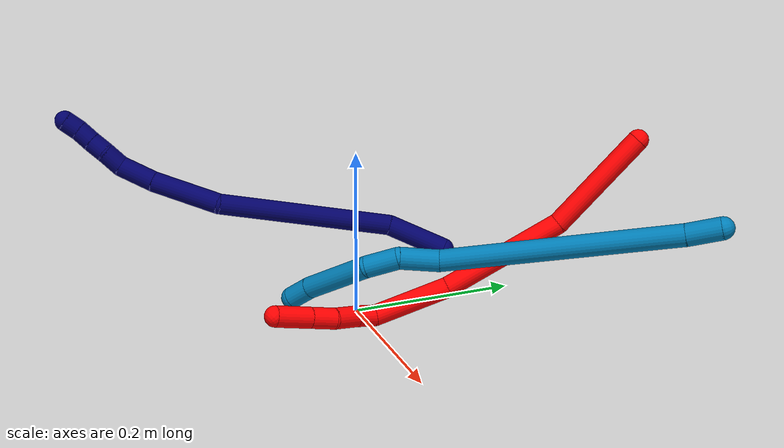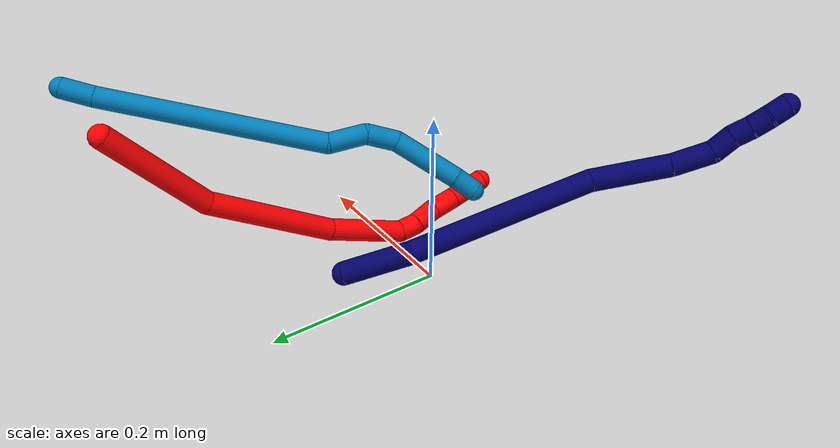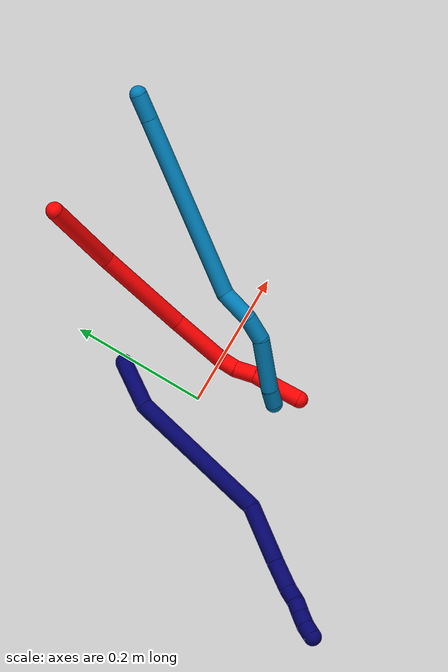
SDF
<sdf version="1.7">
 <world name="default">
  <model name="photoneo_s_sensor">
   <static>1</static>
   <pose>0 0 2 1.57079 1.57079 3.14159</pose>
   <link name="link">
    <inertial><mass>0.1</mass></inertial>
    <sensor name="sensor" type="depth">
     <update_rate>30</update_rate>
     <camera>
      <horizontal_fov>1.22</horizontal_fov>
      <image><width>1920</width><height>1200</height><format>B8G8R8</format></image>
      <clip><near>0.1</near><far>4</far></clip>
      <depth_camera><output>points</output></depth_camera>
     </camera>
     <plugin name="camera_plugin" filename="libgazebo_ros_depth_camera.so">
      <baseline>0.2</baseline>
      <alwaysOn>1</alwaysOn>
      <updateRate>0.0</updateRate>
      <cameraName>camera_ir</cameraName>
      <imageTopicName>/camera/color/image_raw</imageTopicName>
      <cameraInfoTopicName>/camera/color/camera_info</cameraInfoTopicName>
      <depthImageTopicName>/camera/depth/image_raw</depthImageTopicName>
      <depthImageCameraInfoTopicName>/camera/depth/camera_info</depthImageCameraInfoTopicName>
      <pointCloudTopicName>/camera/depth/points</pointCloudTopicName>
      <frameName>fr_optical</frameName>
      <pointCloudCutoff>0.1</pointCloudCutoff>
      <pointCloudCutoffMax>2.0</pointCloudCutoffMax>
      <distortionK1>0</distortionK1>
      <distortionK2>0</distortionK2>
      <distortionK3>0</distortionK3>
      <distortionT1>0</distortionT1>
      <distortionT2>0</distortionT2>
      <CxPrime>0</CxPrime>
      <Cx>0</Cx>
      <Cy>0</Cy>
      <focalLength>0</focalLength>
      <hackBaseline>0</hackBaseline>
     </plugin>
    </sensor>
   </link>
  </model>
  <model name="bin">
   <static>1</static>
   <link name="bottom">
    <collision name="collision-bottom">
     <pose>0 0 -0.01 0 -0 0</pose>
     <geometry><box><size>0.8 0.6 0.02</size></box></geometry>
     <surface>
      <friction><ode><mu>100</mu><mu2>100</mu2></ode></friction>
      <contact><collide_bitmask>65535</collide_bitmask></contact>
     </surface>
    </collision>
   </link>
   <link name="west_wall">
    <collision name="collision-west_wall">
     <pose>-0.41 0 0.1 0 -0 0</pose>
     <geometry><box><size>0.02 0.6 0.2</size></box></geometry>
     <surface>
      <friction><ode><mu>100</mu><mu2>100</mu2></ode></friction>
      <contact><collide_bitmask>65535</collide_bitmask></contact>
     </surface>
    </collision>
   </link>
   <link name="east_wall">
    <collision name="collision-east_wall">
     <pose>0.41 0 0.1 0 -0 0</pose>
     <geometry><box><size>0.02 0.6 0.2</size></box></geometry>
     <surface>
      <friction><ode><mu>100</mu><mu2>100</mu2></ode></friction>
      <contact><collide_bitmask>65535</collide_bitmask></contact>
     </surface>
    </collision>
   </link>
   <link name="south_wall">
    <collision name="collision-south_wall">
     <pose>0 -0.31 0.1 0 -0 0</pose>
     <geometry><box><size>0.8 0.02 0.2</size></box></geometry>
     <surface>
      <friction><ode><mu>100</mu><mu2>100</mu2></ode></friction>
      <contact><collide_bitmask>65535</collide_bitmask></contact>
     </surface>
    </collision>
   </link>
   <link name="north_wall">
    <collision name="collision-north_wall">
     <pose>0 0.31 0.1 0 -0 0</pose>
     <geometry><box><size>0.8 0.02 0.2</size></box></geometry>
     <surface>
      <friction><ode><mu>100</mu><mu2>100</mu2></ode></friction>
      <contact><collide_bitmask>65535</collide_bitmask></contact>
     </surface>
    </collision>
   </link>
  </model>
  <model name="2">
   <static>0</static>
   <link name="2">
    <collision name="collision-cylinder-e_1_1_4">
     <pose>-0.027625 0.005989 -0.060037 -3.04217 -0.429371 2.69292</pose>
     <geometry><cylinder><radius>0.0125</radius><length>0.132718</length></cylinder></geometry>
     <surface>
      <friction><ode><mu>1.16</mu><mu2>1.16</mu2><slip1>0</slip1><slip2>0</slip2></ode></friction>
      <contact><ode><kp>1e+06</kp><kd>1</kd><max_vel>0</max_vel><min_depth>0.001</min_depth></ode></contact>
     </surface>
    </collision>
    <visual name="visual-cylinder-e_1_1_4">
     <pose>-0.027625 0.005989 -0.060037 -3.04217 -0.429371 2.69292</pose>
     <geometry><cylinder><radius>0.0125</radius><length>0.132718</length></cylinder></geometry>
     <material><ambient>1 0 0 1</ambient></material>
    </visual>
    <collision name="collision-cylinder-e_2_4_5">
     <pose>-0.076169 -0.003635 -0.190055 2.92208 -0.283874 -1.82777</pose>
     <geometry><cylinder><radius>0.0125</radius><length>0.149379</length></cylinder></geometry>
     <surface>
      <friction><ode><mu>1.16</mu><mu2>1.16</mu2><slip1>0</slip1><slip2>0</slip2></ode></friction>
      <contact><ode><kp>1e+06</kp><kd>1</kd><max_vel>0</max_vel><min_depth>0.001</min_depth></ode></contact>
     </surface>
    </collision>
    <visual name="visual-cylinder-e_2_4_5">
     <pose>-0.076169 -0.003635 -0.190055 2.92208 -0.283874 -1.82777</pose>
     <geometry><cylinder><radius>0.0125</radius><length>0.149379</length></cylinder></geometry>
     <material><ambient>1 0 0 1</ambient></material>
    </visual>
    <collision name="collision-cylinder-e_3_5_6">
     <pose>-0.105716 -0.035647 -0.301394 2.7641 -0.191541 -0.931925</pose>
     <geometry><cylinder><radius>0.0125</radius><length>0.090642</length></cylinder></geometry>
     <surface>
      <friction><ode><mu>1.16</mu><mu2>1.16</mu2><slip1>0</slip1><slip2>0</slip2></ode></friction>
      <contact><ode><kp>1e+06</kp><kd>1</kd><max_vel>0</max_vel><min_depth>0.001</min_depth></ode></contact>
     </surface>
    </collision>
    <visual name="visual-cylinder-e_3_5_6">
     <pose>-0.105716 -0.035647 -0.301394 2.7641 -0.191541 -0.931925</pose>
     <geometry><cylinder><radius>0.0125</radius><length>0.090642</length></cylinder></geometry>
     <material><ambient>1 0 0 1</ambient></material>
    </visual>
    <collision name="collision-cylinder-e_4_6_7">
     <pose>-0.112781 -0.059049 -0.351464 2.46452 0.13891 0.39014</pose>
     <geometry><cylinder><radius>0.0125</radius><length>0.02257</length></cylinder></geometry>
     <surface>
      <friction><ode><mu>1.16</mu><mu2>1.16</mu2><slip1>0</slip1><slip2>0</slip2></ode></friction>
      <contact><ode><kp>1e+06</kp><kd>1</kd><max_vel>0</max_vel><min_depth>0.001</min_depth></ode></contact>
     </surface>
    </collision>
    <visual name="visual-cylinder-e_4_6_7">
     <pose>-0.112781 -0.059049 -0.351464 2.46452 0.13891 0.39014</pose>
     <geometry><cylinder><radius>0.0125</radius><length>0.02257</length></cylinder></geometry>
     <material><ambient>1 0 0 1</ambient></material>
    </visual>
    <collision name="collision-cylinder-e_5_7_8">
     <pose>-0.105414 -0.074162 -0.372051 2.54239 0.383597 1.12242</pose>
     <geometry><cylinder><radius>0.0125</radius><length>0.031017</length></cylinder></geometry>
     <surface>
      <friction><ode><mu>1.16</mu><mu2>1.16</mu2><slip1>0</slip1><slip2>0</slip2></ode></friction>
      <contact><ode><kp>1e+06</kp><kd>1</kd><max_vel>0</max_vel><min_depth>0.001</min_depth></ode></contact>
     </surface>
    </collision>
    <visual name="visual-cylinder-e_5_7_8">
     <pose>-0.105414 -0.074162 -0.372051 2.54239 0.383597 1.12242</pose>
     <geometry><cylinder><radius>0.0125</radius><length>0.031017</length></cylinder></geometry>
     <material><ambient>1 0 0 1</ambient></material>
    </visual>
    <collision name="collision-cylinder-e_6_8_9">
     <pose>-0.096449 -0.092249 -0.394663 2.39288 0.212444 0.530006</pose>
     <geometry><cylinder><radius>0.0125</radius><length>0.029985</length></cylinder></geometry>
     <surface>
      <friction><ode><mu>1.16</mu><mu2>1.16</mu2><slip1>0</slip1><slip2>0</slip2></ode></friction>
      <contact><ode><kp>1e+06</kp><kd>1</kd><max_vel>0</max_vel><min_depth>0.001</min_depth></ode></contact>
     </surface>
    </collision>
    <visual name="visual-cylinder-e_6_8_9">
     <pose>-0.096449 -0.092249 -0.394663 2.39288 0.212444 0.530006</pose>
     <geometry><cylinder><radius>0.0125</radius><length>0.029985</length></cylinder></geometry>
     <material><ambient>1 0 0 1</ambient></material>
    </visual>
    <collision name="collision-cylinder-e_7_9_2">
     <pose>-0.087804 -0.116564 -0.42094 2.3964 0.253734 0.630889</pose>
     <geometry><cylinder><radius>0.0125</radius><length>0.043689</length></cylinder></geometry>
     <surface>
      <friction><ode><mu>1.16</mu><mu2>1.16</mu2><slip1>0</slip1><slip2>0</slip2></ode></friction>
      <contact><ode><kp>1e+06</kp><kd>1</kd><max_vel>0</max_vel><min_depth>0.001</min_depth></ode></contact>
     </surface>
    </collision>
    <visual name="visual-cylinder-e_7_9_2">
     <pose>-0.087804 -0.116564 -0.42094 2.3964 0.253734 0.630889</pose>
     <geometry><cylinder><radius>0.0125</radius><length>0.043689</length></cylinder></geometry>
     <material><ambient>1 0 0 1</ambient></material>
    </visual>
    <collision name="collision-sphere-2">
     <pose>-0.082321 -0.130903 -0.436481 0 -0 0</pose>
     <geometry><sphere><radius>0.0125</radius></sphere></geometry>
     <surface>
      <friction><ode><mu>1.16</mu><mu2>1.16</mu2><slip1>0</slip1><slip2>0</slip2></ode></friction>
      <contact><ode><kp>1e+06</kp><kd>1</kd><max_vel>0</max_vel><min_depth>0.001</min_depth></ode></contact>
     </surface>
    </collision>
    <visual name="visual-sphere-2">
     <pose>-0.082321 -0.130903 -0.436481 0 -0 0</pose>
     <geometry><sphere><radius>0.0125</radius></sphere></geometry>
     <material><ambient>1 0 0 1</ambient></material>
    </visual>
    <collision name="collision-sphere-9">
     <pose>-0.093287 -0.102225 -0.405399 0 -0 0</pose>
     <geometry><sphere><radius>0.0125</radius></sphere></geometry>
     <surface>
      <friction><ode><mu>1.16</mu><mu2>1.16</mu2><slip1>0</slip1><slip2>0</slip2></ode></friction>
      <contact><ode><kp>1e+06</kp><kd>1</kd><max_vel>0</max_vel><min_depth>0.001</min_depth></ode></contact>
     </surface>
    </collision>
    <visual name="visual-sphere-9">
     <pose>-0.093287 -0.102225 -0.405399 0 -0 0</pose>
     <geometry><sphere><radius>0.0125</radius></sphere></geometry>
     <material><ambient>1 0 0 1</ambient></material>
    </visual>
    <collision name="collision-sphere-4">
     <pose>-0.05525 0.011978 -0.120075 0 -0 0</pose>
     <geometry><sphere><radius>0.0125</radius></sphere></geometry>
     <surface>
      <friction><ode><mu>1.16</mu><mu2>1.16</mu2><slip1>0</slip1><slip2>0</slip2></ode></friction>
      <contact><ode><kp>1e+06</kp><kd>1</kd><max_vel>0</max_vel><min_depth>0.001</min_depth></ode></contact>
     </surface>
    </collision>
    <visual name="visual-sphere-4">
     <pose>-0.05525 0.011978 -0.120075 0 -0 0</pose>
     <geometry><sphere><radius>0.0125</radius></sphere></geometry>
     <material><ambient>1 0 0 1</ambient></material>
    </visual>
    <collision name="collision-sphere-1">
     <geometry><sphere><radius>0.0125</radius></sphere></geometry>
     <surface>
      <friction><ode><mu>1.16</mu><mu2>1.16</mu2><slip1>0</slip1><slip2>0</slip2></ode></friction>
      <contact><ode><kp>1e+06</kp><kd>1</kd><max_vel>0</max_vel><min_depth>0.001</min_depth></ode></contact>
     </surface>
    </collision>
    <visual name="visual-sphere-1">
     <geometry><sphere><radius>0.0125</radius></sphere></geometry>
     <material><ambient>1 0 0 1</ambient></material>
    </visual>
    <collision name="collision-sphere-8">
     <pose>-0.09961 -0.082273 -0.383927 0 -0 0</pose>
     <geometry><sphere><radius>0.0125</radius></sphere></geometry>
     <surface>
      <friction><ode><mu>1.16</mu><mu2>1.16</mu2><slip1>0</slip1><slip2>0</slip2></ode></friction>
      <contact><ode><kp>1e+06</kp><kd>1</kd><max_vel>0</max_vel><min_depth>0.001</min_depth></ode></contact>
     </surface>
    </collision>
    <visual name="visual-sphere-8">
     <pose>-0.09961 -0.082273 -0.383927 0 -0 0</pose>
     <geometry><sphere><radius>0.0125</radius></sphere></geometry>
     <material><ambient>1 0 0 1</ambient></material>
    </visual>
    <collision name="collision-sphere-5">
     <pose>-0.097088 -0.019248 -0.260034 0 -0 0</pose>
     <geometry><sphere><radius>0.0125</radius></sphere></geometry>
     <surface>
      <friction><ode><mu>1.16</mu><mu2>1.16</mu2><slip1>0</slip1><slip2>0</slip2></ode></friction>
      <contact><ode><kp>1e+06</kp><kd>1</kd><max_vel>0</max_vel><min_depth>0.001</min_depth></ode></contact>
     </surface>
    </collision>
    <visual name="visual-sphere-5">
     <pose>-0.097088 -0.019248 -0.260034 0 -0 0</pose>
     <geometry><sphere><radius>0.0125</radius></sphere></geometry>
     <material><ambient>1 0 0 1</ambient></material>
    </visual>
    <collision name="collision-sphere-6">
     <pose>-0.114343 -0.052047 -0.342753 0 -0 0</pose>
     <geometry><sphere><radius>0.0125</radius></sphere></geometry>
     <surface>
      <friction><ode><mu>1.16</mu><mu2>1.16</mu2><slip1>0</slip1><slip2>0</slip2></ode></friction>
      <contact><ode><kp>1e+06</kp><kd>1</kd><max_vel>0</max_vel><min_depth>0.001</min_depth></ode></contact>
     </surface>
    </collision>
    <visual name="visual-sphere-6">
     <pose>-0.114343 -0.052047 -0.342753 0 -0 0</pose>
     <geometry><sphere><radius>0.0125</radius></sphere></geometry>
     <material><ambient>1 0 0 1</ambient></material>
    </visual>
    <collision name="collision-sphere-7">
     <pose>-0.111218 -0.066051 -0.360175 0 -0 0</pose>
     <geometry><sphere><radius>0.0125</radius></sphere></geometry>
     <surface>
      <friction><ode><mu>1.16</mu><mu2>1.16</mu2><slip1>0</slip1><slip2>0</slip2></ode></friction>
      <contact><ode><kp>1e+06</kp><kd>1</kd><max_vel>0</max_vel><min_depth>0.001</min_depth></ode></contact>
     </surface>
    </collision>
    <visual name="visual-sphere-7">
     <pose>-0.111218 -0.066051 -0.360175 0 -0 0</pose>
     <geometry><sphere><radius>0.0125</radius></sphere></geometry>
     <material><ambient>1 0 0 1</ambient></material>
    </visual>
    <inertial>
     <pose>-0.07434 -0.028942 -0.226748 0 -0 0</pose>
     <mass>0.5</mass>
     <inertia>
      <ixx>-0.000414</ixx>
      <ixy>0</ixy>
      <ixz>0</ixz>
      <iyy>-7e-06</iyy>
      <iyz>0</iyz>
      <izz>0.000213</izz>
     </inertia>
    </inertial>
   </link>
   <pose>0.121817 0.301335 0.218559 -0.940984 -0.534197 -0.125945</pose>
  </model>
  <model name="7">
   <static>0</static>
   <link name="7">
    <collision name="collision-cylinder-e_1_1_4">
     <pose>-0.008516 -0.034096 0.009396 1.30189 -0.236299 -0.180341</pose>
     <geometry><cylinder><radius>0.0125</radius><length>0.072757</length></cylinder></geometry>
     <surface>
      <friction><ode><mu>1.16</mu><mu2>1.16</mu2><slip1>0</slip1><slip2>0</slip2></ode></friction>
      <contact><ode><kp>1e+06</kp><kd>1</kd><max_vel>0</max_vel><min_depth>0.001</min_depth></ode></contact>
     </surface>
    </collision>
    <visual name="visual-cylinder-e_1_1_4">
     <pose>-0.008516 -0.034096 0.009396 1.30189 -0.236299 -0.180341</pose>
     <geometry><cylinder><radius>0.0125</radius><length>0.072757</length></cylinder></geometry>
     <material><ambient>0.003922 0 0.403922 1</ambient></material>
    </visual>
    <collision name="collision-cylinder-e_2_4_5">
     <pose>-0.062251 -0.163307 0.010953 1.65303 -0.442475 -0.47906</pose>
     <geometry><cylinder><radius>0.0125</radius><length>0.211213</length></cylinder></geometry>
     <surface>
      <friction><ode><mu>1.16</mu><mu2>1.16</mu2><slip1>0</slip1><slip2>0</slip2></ode></friction>
      <contact><ode><kp>1e+06</kp><kd>1</kd><max_vel>0</max_vel><min_depth>0.001</min_depth></ode></contact>
     </surface>
    </collision>
    <visual name="visual-cylinder-e_2_4_5">
     <pose>-0.062251 -0.163307 0.010953 1.65303 -0.442475 -0.47906</pose>
     <geometry><cylinder><radius>0.0125</radius><length>0.211213</length></cylinder></geometry>
     <material><ambient>0.003922 0 0.403922 1</ambient></material>
    </visual>
    <collision name="collision-cylinder-e_3_5_6">
     <pose>-0.121413 -0.296498 0.016581 1.23087 -0.33242 -0.23612</pose>
     <geometry><cylinder><radius>0.0125</radius><length>0.085455</length></cylinder></geometry>
     <surface>
      <friction><ode><mu>1.16</mu><mu2>1.16</mu2><slip1>0</slip1><slip2>0</slip2></ode></friction>
      <contact><ode><kp>1e+06</kp><kd>1</kd><max_vel>0</max_vel><min_depth>0.001</min_depth></ode></contact>
     </surface>
    </collision>
    <visual name="visual-cylinder-e_3_5_6">
     <pose>-0.121413 -0.296498 0.016581 1.23087 -0.33242 -0.23612</pose>
     <geometry><cylinder><radius>0.0125</radius><length>0.085455</length></cylinder></geometry>
     <material><ambient>0.003922 0 0.403922 1</ambient></material>
    </visual>
    <collision name="collision-cylinder-e_4_6_7">
     <pose>-0.139886 -0.355406 0.035981 1.29329 -0.206178 -0.155887</pose>
     <geometry><cylinder><radius>0.0125</radius><length>0.044257</length></cylinder></geometry>
     <surface>
      <friction><ode><mu>1.16</mu><mu2>1.16</mu2><slip1>0</slip1><slip2>0</slip2></ode></friction>
      <contact><ode><kp>1e+06</kp><kd>1</kd><max_vel>0</max_vel><min_depth>0.001</min_depth></ode></contact>
     </surface>
    </collision>
    <visual name="visual-cylinder-e_4_6_7">
     <pose>-0.139886 -0.355406 0.035981 1.29329 -0.206178 -0.155887</pose>
     <geometry><cylinder><radius>0.0125</radius><length>0.044257</length></cylinder></geometry>
     <material><ambient>0.003922 0 0.403922 1</ambient></material>
    </visual>
    <collision name="collision-cylinder-e_5_7_8">
     <pose>-0.142818 -0.388655 0.043075 1.47758 0.127458 0.116125</pose>
     <geometry><cylinder><radius>0.0125</radius><length>0.025147</length></cylinder></geometry>
     <surface>
      <friction><ode><mu>1.16</mu><mu2>1.16</mu2><slip1>0</slip1><slip2>0</slip2></ode></friction>
      <contact><ode><kp>1e+06</kp><kd>1</kd><max_vel>0</max_vel><min_depth>0.001</min_depth></ode></contact>
     </surface>
    </collision>
    <visual name="visual-cylinder-e_5_7_8">
     <pose>-0.142818 -0.388655 0.043075 1.47758 0.127458 0.116125</pose>
     <geometry><cylinder><radius>0.0125</radius><length>0.025147</length></cylinder></geometry>
     <material><ambient>0.003922 0 0.403922 1</ambient></material>
    </visual>
    <collision name="collision-cylinder-e_6_8_9">
     <pose>-0.140949 -0.410845 0.047228 1.27369 0.02654 0.019631</pose>
     <geometry><cylinder><radius>0.0125</radius><length>0.020449</length></cylinder></geometry>
     <surface>
      <friction><ode><mu>1.16</mu><mu2>1.16</mu2><slip1>0</slip1><slip2>0</slip2></ode></friction>
      <contact><ode><kp>1e+06</kp><kd>1</kd><max_vel>0</max_vel><min_depth>0.001</min_depth></ode></contact>
     </surface>
    </collision>
    <visual name="visual-cylinder-e_6_8_9">
     <pose>-0.140949 -0.410845 0.047228 1.27369 0.02654 0.019631</pose>
     <geometry><cylinder><radius>0.0125</radius><length>0.020449</length></cylinder></geometry>
     <material><ambient>0.003922 0 0.403922 1</ambient></material>
    </visual>
    <collision name="collision-cylinder-e_7_9_10">
     <pose>-0.139697 -0.430625 0.052696 1.32823 0.094789 0.074215</pose>
     <geometry><cylinder><radius>0.0125</radius><length>0.02071</length></cylinder></geometry>
     <surface>
      <friction><ode><mu>1.16</mu><mu2>1.16</mu2><slip1>0</slip1><slip2>0</slip2></ode></friction>
      <contact><ode><kp>1e+06</kp><kd>1</kd><max_vel>0</max_vel><min_depth>0.001</min_depth></ode></contact>
     </surface>
    </collision>
    <visual name="visual-cylinder-e_7_9_10">
     <pose>-0.139697 -0.430625 0.052696 1.32823 0.094789 0.074215</pose>
     <geometry><cylinder><radius>0.0125</radius><length>0.02071</length></cylinder></geometry>
     <material><ambient>0.003922 0 0.403922 1</ambient></material>
    </visual>
    <collision name="collision-cylinder-e_8_10_2">
     <pose>-0.138764 -0.45059 0.056143 1.47365 -0.004648 -0.004217</pose>
     <geometry><cylinder><radius>0.0125</radius><length>0.020012</length></cylinder></geometry>
     <surface>
      <friction><ode><mu>1.16</mu><mu2>1.16</mu2><slip1>0</slip1><slip2>0</slip2></ode></friction>
      <contact><ode><kp>1e+06</kp><kd>1</kd><max_vel>0</max_vel><min_depth>0.001</min_depth></ode></contact>
     </surface>
    </collision>
    <visual name="visual-cylinder-e_8_10_2">
     <pose>-0.138764 -0.45059 0.056143 1.47365 -0.004648 -0.004217</pose>
     <geometry><cylinder><radius>0.0125</radius><length>0.020012</length></cylinder></geometry>
     <material><ambient>0.003922 0 0.403922 1</ambient></material>
    </visual>
    <collision name="collision-sphere-2">
     <pose>-0.13881 -0.460549 0.057113 0 -0 0</pose>
     <geometry><sphere><radius>0.0125</radius></sphere></geometry>
     <surface>
      <friction><ode><mu>1.16</mu><mu2>1.16</mu2><slip1>0</slip1><slip2>0</slip2></ode></friction>
      <contact><ode><kp>1e+06</kp><kd>1</kd><max_vel>0</max_vel><min_depth>0.001</min_depth></ode></contact>
     </surface>
    </collision>
    <visual name="visual-sphere-2">
     <pose>-0.13881 -0.460549 0.057113 0 -0 0</pose>
     <geometry><sphere><radius>0.0125</radius></sphere></geometry>
     <material><ambient>0.003922 0 0.403922 1</ambient></material>
    </visual>
    <collision name="collision-sphere-10">
     <pose>-0.138717 -0.440632 0.055173 0 -0 0</pose>
     <geometry><sphere><radius>0.0125</radius></sphere></geometry>
     <surface>
      <friction><ode><mu>1.16</mu><mu2>1.16</mu2><slip1>0</slip1><slip2>0</slip2></ode></friction>
      <contact><ode><kp>1e+06</kp><kd>1</kd><max_vel>0</max_vel><min_depth>0.001</min_depth></ode></contact>
     </surface>
    </collision>
    <visual name="visual-sphere-10">
     <pose>-0.138717 -0.440632 0.055173 0 -0 0</pose>
     <geometry><sphere><radius>0.0125</radius></sphere></geometry>
     <material><ambient>0.003922 0 0.403922 1</ambient></material>
    </visual>
    <collision name="collision-sphere-9">
     <pose>-0.140677 -0.420618 0.05022 0 -0 0</pose>
     <geometry><sphere><radius>0.0125</radius></sphere></geometry>
     <surface>
      <friction><ode><mu>1.16</mu><mu2>1.16</mu2><slip1>0</slip1><slip2>0</slip2></ode></friction>
      <contact><ode><kp>1e+06</kp><kd>1</kd><max_vel>0</max_vel><min_depth>0.001</min_depth></ode></contact>
     </surface>
    </collision>
    <visual name="visual-sphere-9">
     <pose>-0.140677 -0.420618 0.05022 0 -0 0</pose>
     <geometry><sphere><radius>0.0125</radius></sphere></geometry>
     <material><ambient>0.003922 0 0.403922 1</ambient></material>
    </visual>
    <collision name="collision-sphere-4">
     <pose>-0.017033 -0.068193 0.018792 0 -0 0</pose>
     <geometry><sphere><radius>0.0125</radius></sphere></geometry>
     <surface>
      <friction><ode><mu>1.16</mu><mu2>1.16</mu2><slip1>0</slip1><slip2>0</slip2></ode></friction>
      <contact><ode><kp>1e+06</kp><kd>1</kd><max_vel>0</max_vel><min_depth>0.001</min_depth></ode></contact>
     </surface>
    </collision>
    <visual name="visual-sphere-4">
     <pose>-0.017033 -0.068193 0.018792 0 -0 0</pose>
     <geometry><sphere><radius>0.0125</radius></sphere></geometry>
     <material><ambient>0.003922 0 0.403922 1</ambient></material>
    </visual>
    <collision name="collision-sphere-1">
     <geometry><sphere><radius>0.0125</radius></sphere></geometry>
     <surface>
      <friction><ode><mu>1.16</mu><mu2>1.16</mu2><slip1>0</slip1><slip2>0</slip2></ode></friction>
      <contact><ode><kp>1e+06</kp><kd>1</kd><max_vel>0</max_vel><min_depth>0.001</min_depth></ode></contact>
     </surface>
    </collision>
    <visual name="visual-sphere-1">
     <geometry><sphere><radius>0.0125</radius></sphere></geometry>
     <material><ambient>0.003922 0 0.403922 1</ambient></material>
    </visual>
    <collision name="collision-sphere-8">
     <pose>-0.14122 -0.401072 0.044236 0 -0 0</pose>
     <geometry><sphere><radius>0.0125</radius></sphere></geometry>
     <surface>
      <friction><ode><mu>1.16</mu><mu2>1.16</mu2><slip1>0</slip1><slip2>0</slip2></ode></friction>
      <contact><ode><kp>1e+06</kp><kd>1</kd><max_vel>0</max_vel><min_depth>0.001</min_depth></ode></contact>
     </surface>
    </collision>
    <visual name="visual-sphere-8">
     <pose>-0.14122 -0.401072 0.044236 0 -0 0</pose>
     <geometry><sphere><radius>0.0125</radius></sphere></geometry>
     <material><ambient>0.003922 0 0.403922 1</ambient></material>
    </visual>
    <collision name="collision-sphere-5">
     <pose>-0.10747 -0.25842 0.003114 0 -0 0</pose>
     <geometry><sphere><radius>0.0125</radius></sphere></geometry>
     <surface>
      <friction><ode><mu>1.16</mu><mu2>1.16</mu2><slip1>0</slip1><slip2>0</slip2></ode></friction>
      <contact><ode><kp>1e+06</kp><kd>1</kd><max_vel>0</max_vel><min_depth>0.001</min_depth></ode></contact>
     </surface>
    </collision>
    <visual name="visual-sphere-5">
     <pose>-0.10747 -0.25842 0.003114 0 -0 0</pose>
     <geometry><sphere><radius>0.0125</radius></sphere></geometry>
     <material><ambient>0.003922 0 0.403922 1</ambient></material>
    </visual>
    <collision name="collision-sphere-6">
     <pose>-0.135356 -0.334575 0.030047 0 -0 0</pose>
     <geometry><sphere><radius>0.0125</radius></sphere></geometry>
     <surface>
      <friction><ode><mu>1.16</mu><mu2>1.16</mu2><slip1>0</slip1><slip2>0</slip2></ode></friction>
      <contact><ode><kp>1e+06</kp><kd>1</kd><max_vel>0</max_vel><min_depth>0.001</min_depth></ode></contact>
     </surface>
    </collision>
    <visual name="visual-sphere-6">
     <pose>-0.135356 -0.334575 0.030047 0 -0 0</pose>
     <geometry><sphere><radius>0.0125</radius></sphere></geometry>
     <material><ambient>0.003922 0 0.403922 1</ambient></material>
    </visual>
    <collision name="collision-sphere-7">
     <pose>-0.144417 -0.376237 0.041914 0 -0 0</pose>
     <geometry><sphere><radius>0.0125</radius></sphere></geometry>
     <surface>
      <friction><ode><mu>1.16</mu><mu2>1.16</mu2><slip1>0</slip1><slip2>0</slip2></ode></friction>
      <contact><ode><kp>1e+06</kp><kd>1</kd><max_vel>0</max_vel><min_depth>0.001</min_depth></ode></contact>
     </surface>
    </collision>
    <visual name="visual-sphere-7">
     <pose>-0.144417 -0.376237 0.041914 0 -0 0</pose>
     <geometry><sphere><radius>0.0125</radius></sphere></geometry>
     <material><ambient>0.003922 0 0.403922 1</ambient></material>
    </visual>
    <inertial>
     <pose>-0.084956 -0.2283 0.020541 0 -0 0</pose>
     <mass>0.5</mass>
     <inertia>
      <ixx>0.000375</ixx>
      <ixy>0</ixy>
      <ixz>0</ixz>
      <iyy>-0.000251</iyy>
      <iyz>0</iyz>
      <izz>0.001184</izz>
     </inertia>
    </inertial>
   </link>
   <pose>-0.008663 0.118072 0.059877 -1.67345 -0.938668 1.36986</pose>
  </model>
  <model name="9">
   <static>0</static>
   <link name="9">
    <collision name="collision-cylinder-e_1_1_4">
     <pose>-0.002063 -0.00397 -0.018587 2.93118 -0.108109 -0.947029</pose>
     <geometry><cylinder><radius>0.0125</radius><length>0.038236</length></cylinder></geometry>
     <surface>
      <friction><ode><mu>1.16</mu><mu2>1.16</mu2><slip1>0</slip1><slip2>0</slip2></ode></friction>
      <contact><ode><kp>1e+06</kp><kd>1</kd><max_vel>0</max_vel><min_depth>0.001</min_depth></ode></contact>
     </surface>
    </collision>
    <visual name="visual-cylinder-e_1_1_4">
     <pose>-0.002063 -0.00397 -0.018587 2.93118 -0.108109 -0.947029</pose>
     <geometry><cylinder><radius>0.0125</radius><length>0.038236</length></cylinder></geometry>
     <material><ambient>0 0.490196 0.709804 1</ambient></material>
    </visual>
    <collision name="collision-cylinder-e_2_4_5">
     <pose>-0.010801 -0.043168 -0.166445 2.87554 -0.049784 -0.367894</pose>
     <geometry><cylinder><radius>0.0125</radius><length>0.268303</length></cylinder></geometry>
     <surface>
      <friction><ode><mu>1.16</mu><mu2>1.16</mu2><slip1>0</slip1><slip2>0</slip2></ode></friction>
      <contact><ode><kp>1e+06</kp><kd>1</kd><max_vel>0</max_vel><min_depth>0.001</min_depth></ode></contact>
     </surface>
    </collision>
    <visual name="visual-cylinder-e_2_4_5">
     <pose>-0.010801 -0.043168 -0.166445 2.87554 -0.049784 -0.367894</pose>
     <geometry><cylinder><radius>0.0125</radius><length>0.268303</length></cylinder></geometry>
     <material><ambient>0 0.490196 0.709804 1</ambient></material>
    </visual>
    <collision name="collision-cylinder-e_3_5_6">
     <pose>-0.008422 -0.081993 -0.316533 2.97053 0.404965 2.35035</pose>
     <geometry><cylinder><radius>0.0125</radius><length>0.045967</length></cylinder></geometry>
     <surface>
      <friction><ode><mu>1.16</mu><mu2>1.16</mu2><slip1>0</slip1><slip2>0</slip2></ode></friction>
      <contact><ode><kp>1e+06</kp><kd>1</kd><max_vel>0</max_vel><min_depth>0.001</min_depth></ode></contact>
     </surface>
    </collision>
    <visual name="visual-cylinder-e_3_5_6">
     <pose>-0.008422 -0.081993 -0.316533 2.97053 0.404965 2.35035</pose>
     <geometry><cylinder><radius>0.0125</radius><length>0.045967</length></cylinder></geometry>
     <material><ambient>0 0.490196 0.709804 1</ambient></material>
    </visual>
    <collision name="collision-cylinder-e_4_6_7">
     <pose>-0.000471 -0.087149 -0.356177 3.05891 -0.05836 -1.22894</pose>
     <geometry><cylinder><radius>0.0125</radius><length>0.037849</length></cylinder></geometry>
     <surface>
      <friction><ode><mu>1.16</mu><mu2>1.16</mu2><slip1>0</slip1><slip2>0</slip2></ode></friction>
      <contact><ode><kp>1e+06</kp><kd>1</kd><max_vel>0</max_vel><min_depth>0.001</min_depth></ode></contact>
     </surface>
    </collision>
    <visual name="visual-cylinder-e_4_6_7">
     <pose>-0.000471 -0.087149 -0.356177 3.05891 -0.05836 -1.22894</pose>
     <geometry><cylinder><radius>0.0125</radius><length>0.037849</length></cylinder></geometry>
     <material><ambient>0 0.490196 0.709804 1</ambient></material>
    </visual>
    <collision name="collision-cylinder-e_5_7_8">
     <pose>-0.017788 -0.097946 -0.411577 2.8942 -0.405966 -2.05476</pose>
     <geometry><cylinder><radius>0.0125</radius><length>0.082116</length></cylinder></geometry>
     <surface>
      <friction><ode><mu>1.16</mu><mu2>1.16</mu2><slip1>0</slip1><slip2>0</slip2></ode></friction>
      <contact><ode><kp>1e+06</kp><kd>1</kd><max_vel>0</max_vel><min_depth>0.001</min_depth></ode></contact>
     </surface>
    </collision>
    <visual name="visual-cylinder-e_5_7_8">
     <pose>-0.017788 -0.097946 -0.411577 2.8942 -0.405966 -2.05476</pose>
     <geometry><cylinder><radius>0.0125</radius><length>0.082116</length></cylinder></geometry>
     <material><ambient>0 0.490196 0.709804 1</ambient></material>
    </visual>
    <collision name="collision-cylinder-e_6_8_2">
     <pose>-0.039756 -0.108189 -0.460613 3.0611 -0.431253 -2.77796</pose>
     <geometry><cylinder><radius>0.0125</radius><length>0.027529</length></cylinder></geometry>
     <surface>
      <friction><ode><mu>1.16</mu><mu2>1.16</mu2><slip1>0</slip1><slip2>0</slip2></ode></friction>
      <contact><ode><kp>1e+06</kp><kd>1</kd><max_vel>0</max_vel><min_depth>0.001</min_depth></ode></contact>
     </surface>
    </collision>
    <visual name="visual-cylinder-e_6_8_2">
     <pose>-0.039756 -0.108189 -0.460613 3.0611 -0.431253 -2.77796</pose>
     <geometry><cylinder><radius>0.0125</radius><length>0.027529</length></cylinder></geometry>
     <material><ambient>0 0.490196 0.709804 1</ambient></material>
    </visual>
    <collision name="collision-sphere-2">
     <pose>-0.04551 -0.109194 -0.473077 0 -0 0</pose>
     <geometry><sphere><radius>0.0125</radius></sphere></geometry>
     <surface>
      <friction><ode><mu>1.16</mu><mu2>1.16</mu2><slip1>0</slip1><slip2>0</slip2></ode></friction>
      <contact><ode><kp>1e+06</kp><kd>1</kd><max_vel>0</max_vel><min_depth>0.001</min_depth></ode></contact>
     </surface>
    </collision>
    <visual name="visual-sphere-2">
     <pose>-0.04551 -0.109194 -0.473077 0 -0 0</pose>
     <geometry><sphere><radius>0.0125</radius></sphere></geometry>
     <material><ambient>0 0.490196 0.709804 1</ambient></material>
    </visual>
    <collision name="collision-sphere-4">
     <pose>-0.004126 -0.007939 -0.037174 0 -0 0</pose>
     <geometry><sphere><radius>0.0125</radius></sphere></geometry>
     <surface>
      <friction><ode><mu>1.16</mu><mu2>1.16</mu2><slip1>0</slip1><slip2>0</slip2></ode></friction>
      <contact><ode><kp>1e+06</kp><kd>1</kd><max_vel>0</max_vel><min_depth>0.001</min_depth></ode></contact>
     </surface>
    </collision>
    <visual name="visual-sphere-4">
     <pose>-0.004126 -0.007939 -0.037174 0 -0 0</pose>
     <geometry><sphere><radius>0.0125</radius></sphere></geometry>
     <material><ambient>0 0.490196 0.709804 1</ambient></material>
    </visual>
    <collision name="collision-sphere-1">
     <geometry><sphere><radius>0.0125</radius></sphere></geometry>
     <surface>
      <friction><ode><mu>1.16</mu><mu2>1.16</mu2><slip1>0</slip1><slip2>0</slip2></ode></friction>
      <contact><ode><kp>1e+06</kp><kd>1</kd><max_vel>0</max_vel><min_depth>0.001</min_depth></ode></contact>
     </surface>
    </collision>
    <visual name="visual-sphere-1">
     <geometry><sphere><radius>0.0125</radius></sphere></geometry>
     <material><ambient>0 0.490196 0.709804 1</ambient></material>
    </visual>
    <collision name="collision-sphere-8">
     <pose>-0.034002 -0.107183 -0.448149 0 -0 0</pose>
     <geometry><sphere><radius>0.0125</radius></sphere></geometry>
     <surface>
      <friction><ode><mu>1.16</mu><mu2>1.16</mu2><slip1>0</slip1><slip2>0</slip2></ode></friction>
      <contact><ode><kp>1e+06</kp><kd>1</kd><max_vel>0</max_vel><min_depth>0.001</min_depth></ode></contact>
     </surface>
    </collision>
    <visual name="visual-sphere-8">
     <pose>-0.034002 -0.107183 -0.448149 0 -0 0</pose>
     <geometry><sphere><radius>0.0125</radius></sphere></geometry>
     <material><ambient>0 0.490196 0.709804 1</ambient></material>
    </visual>
    <collision name="collision-sphere-5">
     <pose>-0.017477 -0.078397 -0.295717 0 -0 0</pose>
     <geometry><sphere><radius>0.0125</radius></sphere></geometry>
     <surface>
      <friction><ode><mu>1.16</mu><mu2>1.16</mu2><slip1>0</slip1><slip2>0</slip2></ode></friction>
      <contact><ode><kp>1e+06</kp><kd>1</kd><max_vel>0</max_vel><min_depth>0.001</min_depth></ode></contact>
     </surface>
    </collision>
    <visual name="visual-sphere-5">
     <pose>-0.017477 -0.078397 -0.295717 0 -0 0</pose>
     <geometry><sphere><radius>0.0125</radius></sphere></geometry>
     <material><ambient>0 0.490196 0.709804 1</ambient></material>
    </visual>
    <collision name="collision-sphere-6">
     <pose>0.000633 -0.085589 -0.337349 0 -0 0</pose>
     <geometry><sphere><radius>0.0125</radius></sphere></geometry>
     <surface>
      <friction><ode><mu>1.16</mu><mu2>1.16</mu2><slip1>0</slip1><slip2>0</slip2></ode></friction>
      <contact><ode><kp>1e+06</kp><kd>1</kd><max_vel>0</max_vel><min_depth>0.001</min_depth></ode></contact>
     </surface>
    </collision>
    <visual name="visual-sphere-6">
     <pose>0.000633 -0.085589 -0.337349 0 -0 0</pose>
     <geometry><sphere><radius>0.0125</radius></sphere></geometry>
     <material><ambient>0 0.490196 0.709804 1</ambient></material>
    </visual>
    <collision name="collision-sphere-7">
     <pose>-0.001574 -0.088709 -0.375004 0 -0 0</pose>
     <geometry><sphere><radius>0.0125</radius></sphere></geometry>
     <surface>
      <friction><ode><mu>1.16</mu><mu2>1.16</mu2><slip1>0</slip1><slip2>0</slip2></ode></friction>
      <contact><ode><kp>1e+06</kp><kd>1</kd><max_vel>0</max_vel><min_depth>0.001</min_depth></ode></contact>
     </surface>
    </collision>
    <visual name="visual-sphere-7">
     <pose>-0.001574 -0.088709 -0.375004 0 -0 0</pose>
     <geometry><sphere><radius>0.0125</radius></sphere></geometry>
     <material><ambient>0 0.490196 0.709804 1</ambient></material>
    </visual>
    <inertial>
     <pose>-0.011874 -0.059645 -0.239754 0 -0 0</pose>
     <mass>0.5</mass>
     <inertia>
      <ixx>0.000855</ixx>
      <ixy>0</ixy>
      <ixz>0</ixz>
      <iyy>-0.002055</iyy>
      <iyz>0</iyz>
      <izz>0.000501</izz>
     </inertia>
    </inertial>
   </link>
   <pose>0.320385 0.286444 0.186127 -1.01275 -0.92335 -0.82539</pose>
  </model>
 </world>
</sdf>
